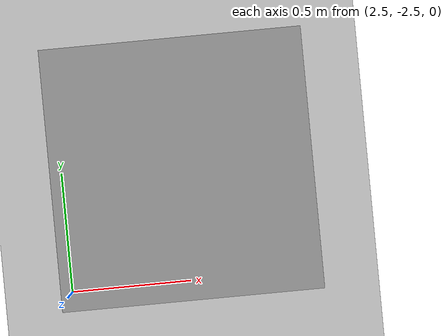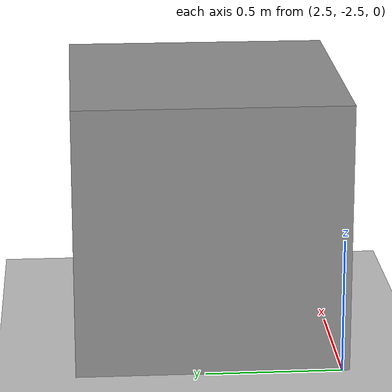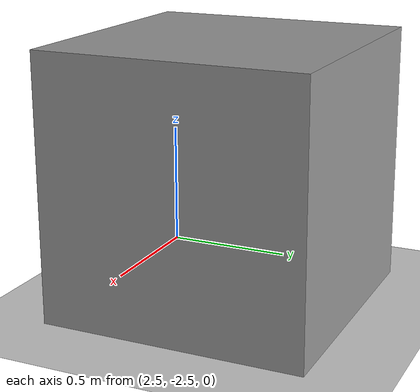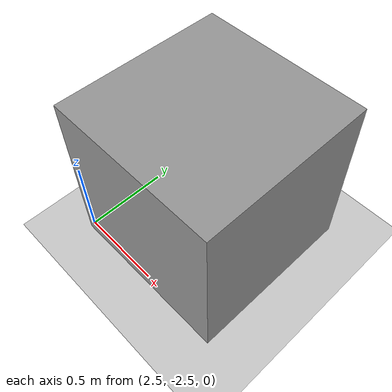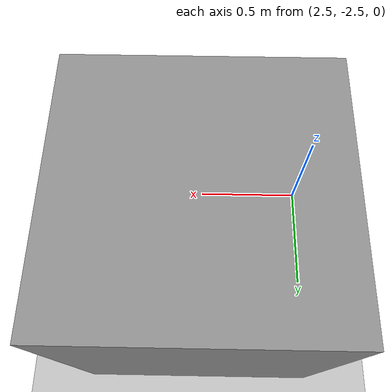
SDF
<?xml version="1.0" ?>
<sdf version="1.4">
  <!-- We use a custom world for the rrbot so that the camera angle is launched correctly -->

  <world name="default">
    <include>
      <uri>model://ground_plane</uri>
    </include>

    <!-- Global light source -->
    <include>
      <uri>model://sun</uri>
    </include>

    <!-- Focus camera on tall pendulum -->
    <gui fullscreen='0'>
      <camera name='user_camera'>
        <pose>4.927360 -4.376610 3.740080 0.000000 0.275643 2.356190</pose>
        <view_controller>orbit</view_controller>
      </camera>
    </gui>

<!-- test box -->
  <model name='unit_box_0'>
    <pose frame=''>3.0047 -2.02707 0.5 0 -0 0</pose>
    <static>1</static>
    <link name='link'>
      <inertial>
        <mass>1</mass>
        <inertia>
          <ixx>0.166667</ixx>
          <ixy>0</ixy>
          <ixz>0</ixz>
          <iyy>0.166667</iyy>
          <iyz>0</iyz>
          <izz>0.166667</izz>
        </inertia>
      </inertial>
      <collision name='collision'>
        <geometry>
          <box>
            <size>1 1 1</size>
          </box>
        </geometry>
        <max_contacts>10</max_contacts>
        <surface>
          <contact>
            <ode/>
          </contact>
          <bounce/>
          <friction>
            <torsional>
              <ode/>
            </torsional>
            <ode/>
          </friction>
        </surface>
      </collision>
      <visual name='visual'>
        <geometry>
          <box>
            <size>1 1 1</size>
          </box>
        </geometry>
        <material>
          <script>
            <name>Gazebo/Grey</name>
            <uri>file://media/materials/scripts/gazebo.material</uri>
          </script>
        </material>
      </visual>
      <self_collide>0</self_collide>
      <kinematic>0</kinematic>
      <gravity>1</gravity>
    </link>
  </model>

  </world>
</sdf>
